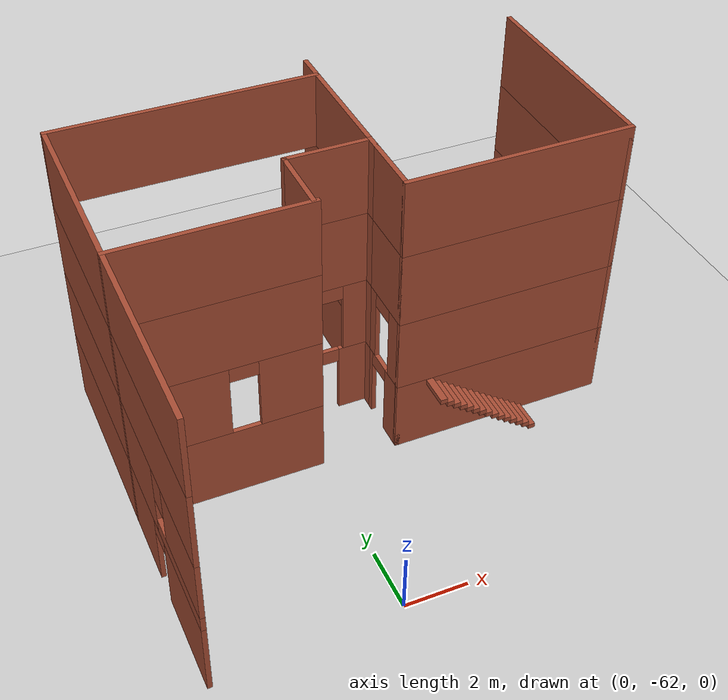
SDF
<sdf version="1.7">
 <world name="default">
  <model name="ground_plane">
   <static>1</static>
   <link name="link">
    <collision name="collision">
     <geometry><plane><normal>0 0 1</normal><size>300 300</size></plane></geometry>
     <surface>
      <contact><collide_bitmask>65535</collide_bitmask></contact>
      <friction><ode><mu>100</mu><mu2>50</mu2></ode></friction>
     </surface>
    </collision>
    <visual name="visual">
     <cast_shadows>0</cast_shadows>
     <geometry><plane><normal>0 0 1</normal><size>300 300</size></plane></geometry>
     <material>
      <script><uri>file://media/materials/scripts/gazebo.material</uri><name>Gazebo/Grey</name></script>
     </material>
    </visual>
   </link>
  </model>
  <model name="Drone_House_2">
   <pose>1.8622 -57.4379 0 0 -0 0</pose>
   <link name="Stairs_0">
    <visual name="Stairs_0_Visual_0">
     <pose>4.91856 0.660416 0.083333 0 -0 -1.5708</pose>
     <geometry><box><size>1 0.233333 0.166667</size></box></geometry>
     <material>
      <script><uri>file://media/materials/scripts/gazebo.material</uri><name>Gazebo/Bricks</name></script>
      <ambient>1 1 1 1</ambient>
     </material>
     <meta><layer>0</layer></meta>
    </visual>
    <collision name="Stairs_0_Collision_0">
     <geometry><box><size>1 0.233333 0.166667</size></box></geometry>
     <pose>4.91856 0.660416 0.083333 0 -0 -1.5708</pose>
    </collision>
    <visual name="Stairs_0_Visual_1">
     <pose>4.68522 0.660416 0.25 0 -0 -1.5708</pose>
     <geometry><box><size>1 0.233333 0.166667</size></box></geometry>
     <material>
      <script><uri>file://media/materials/scripts/gazebo.material</uri><name>Gazebo/Bricks</name></script>
      <ambient>1 1 1 1</ambient>
     </material>
     <meta><layer>0</layer></meta>
    </visual>
    <collision name="Stairs_0_Collision_1">
     <geometry><box><size>1 0.233333 0.166667</size></box></geometry>
     <pose>4.68522 0.660416 0.25 0 -0 -1.5708</pose>
    </collision>
    <visual name="Stairs_0_Visual_2">
     <pose>4.45189 0.660416 0.416667 0 -0 -1.5708</pose>
     <geometry><box><size>1 0.233333 0.166667</size></box></geometry>
     <material>
      <script><uri>file://media/materials/scripts/gazebo.material</uri><name>Gazebo/Bricks</name></script>
      <ambient>1 1 1 1</ambient>
     </material>
     <meta><layer>0</layer></meta>
    </visual>
    <collision name="Stairs_0_Collision_2">
     <geometry><box><size>1 0.233333 0.166667</size></box></geometry>
     <pose>4.45189 0.660416 0.416667 0 -0 -1.5708</pose>
    </collision>
    <visual name="Stairs_0_Visual_3">
     <pose>4.21856 0.660416 0.583333 0 -0 -1.5708</pose>
     <geometry><box><size>1 0.233333 0.166667</size></box></geometry>
     <material>
      <script><uri>file://media/materials/scripts/gazebo.material</uri><name>Gazebo/Bricks</name></script>
      <ambient>1 1 1 1</ambient>
     </material>
     <meta><layer>0</layer></meta>
    </visual>
    <collision name="Stairs_0_Collision_3">
     <geometry><box><size>1 0.233333 0.166667</size></box></geometry>
     <pose>4.21856 0.660416 0.583333 0 -0 -1.5708</pose>
    </collision>
    <visual name="Stairs_0_Visual_4">
     <pose>3.98522 0.660417 0.75 0 -0 -1.5708</pose>
     <geometry><box><size>1 0.233333 0.166667</size></box></geometry>
     <material>
      <script><uri>file://media/materials/scripts/gazebo.material</uri><name>Gazebo/Bricks</name></script>
      <ambient>1 1 1 1</ambient>
     </material>
     <meta><layer>0</layer></meta>
    </visual>
    <collision name="Stairs_0_Collision_4">
     <geometry><box><size>1 0.233333 0.166667</size></box></geometry>
     <pose>3.98522 0.660417 0.75 0 -0 -1.5708</pose>
    </collision>
    <visual name="Stairs_0_Visual_5">
     <pose>3.75189 0.660417 0.916667 0 -0 -1.5708</pose>
     <geometry><box><size>1 0.233333 0.166667</size></box></geometry>
     <material>
      <script><uri>file://media/materials/scripts/gazebo.material</uri><name>Gazebo/Bricks</name></script>
      <ambient>1 1 1 1</ambient>
     </material>
     <meta><layer>0</layer></meta>
    </visual>
    <collision name="Stairs_0_Collision_5">
     <geometry><box><size>1 0.233333 0.166667</size></box></geometry>
     <pose>3.75189 0.660417 0.916667 0 -0 -1.5708</pose>
    </collision>
    <visual name="Stairs_0_Visual_6">
     <pose>3.51856 0.660417 1.08333 0 -0 -1.5708</pose>
     <geometry><box><size>1 0.233333 0.166667</size></box></geometry>
     <material>
      <script><uri>file://media/materials/scripts/gazebo.material</uri><name>Gazebo/Bricks</name></script>
      <ambient>1 1 1 1</ambient>
     </material>
     <meta><layer>0</layer></meta>
    </visual>
    <collision name="Stairs_0_Collision_6">
     <geometry><box><size>1 0.233333 0.166667</size></box></geometry>
     <pose>3.51856 0.660417 1.08333 0 -0 -1.5708</pose>
    </collision>
    <visual name="Stairs_0_Visual_7">
     <pose>3.28522 0.660417 1.25 0 -0 -1.5708</pose>
     <geometry><box><size>1 0.233333 0.166667</size></box></geometry>
     <material>
      <script><uri>file://media/materials/scripts/gazebo.material</uri><name>Gazebo/Bricks</name></script>
      <ambient>1 1 1 1</ambient>
     </material>
     <meta><layer>0</layer></meta>
    </visual>
    <collision name="Stairs_0_Collision_7">
     <geometry><box><size>1 0.233333 0.166667</size></box></geometry>
     <pose>3.28522 0.660417 1.25 0 -0 -1.5708</pose>
    </collision>
    <visual name="Stairs_0_Visual_8">
     <pose>3.05189 0.660417 1.41667 0 -0 -1.5708</pose>
     <geometry><box><size>1 0.233333 0.166667</size></box></geometry>
     <material>
      <script><uri>file://media/materials/scripts/gazebo.material</uri><name>Gazebo/Bricks</name></script>
      <ambient>1 1 1 1</ambient>
     </material>
     <meta><layer>0</layer></meta>
    </visual>
    <collision name="Stairs_0_Collision_8">
     <geometry><box><size>1 0.233333 0.166667</size></box></geometry>
     <pose>3.05189 0.660417 1.41667 0 -0 -1.5708</pose>
    </collision>
    <visual name="Stairs_0_Visual_9">
     <pose>2.81856 0.660417 1.58333 0 -0 -1.5708</pose>
     <geometry><box><size>1 0.233333 0.166667</size></box></geometry>
     <material>
      <script><uri>file://media/materials/scripts/gazebo.material</uri><name>Gazebo/Bricks</name></script>
      <ambient>1 1 1 1</ambient>
     </material>
     <meta><layer>0</layer></meta>
    </visual>
    <collision name="Stairs_0_Collision_9">
     <geometry><box><size>1 0.233333 0.166667</size></box></geometry>
     <pose>2.81856 0.660417 1.58333 0 -0 -1.5708</pose>
    </collision>
    <visual name="Stairs_0_Visual_10">
     <pose>2.58522 0.660417 1.75 0 -0 -1.5708</pose>
     <geometry><box><size>1 0.233333 0.166667</size></box></geometry>
     <material>
      <script><uri>file://media/materials/scripts/gazebo.material</uri><name>Gazebo/Bricks</name></script>
      <ambient>1 1 1 1</ambient>
     </material>
     <meta><layer>0</layer></meta>
    </visual>
    <collision name="Stairs_0_Collision_10">
     <geometry><box><size>1 0.233333 0.166667</size></box></geometry>
     <pose>2.58522 0.660417 1.75 0 -0 -1.5708</pose>
    </collision>
    <visual name="Stairs_0_Visual_11">
     <pose>2.35189 0.660417 1.91667 0 -0 -1.5708</pose>
     <geometry><box><size>1 0.233333 0.166667</size></box></geometry>
     <material>
      <script><uri>file://media/materials/scripts/gazebo.material</uri><name>Gazebo/Bricks</name></script>
      <ambient>1 1 1 1</ambient>
     </material>
     <meta><layer>0</layer></meta>
    </visual>
    <collision name="Stairs_0_Collision_11">
     <geometry><box><size>1 0.233333 0.166667</size></box></geometry>
     <pose>2.35189 0.660417 1.91667 0 -0 -1.5708</pose>
    </collision>
    <visual name="Stairs_0_Visual_12">
     <pose>2.11856 0.660417 2.08333 0 -0 -1.5708</pose>
     <geometry><box><size>1 0.233333 0.166667</size></box></geometry>
     <material>
      <script><uri>file://media/materials/scripts/gazebo.material</uri><name>Gazebo/Bricks</name></script>
      <ambient>1 1 1 1</ambient>
     </material>
     <meta><layer>0</layer></meta>
    </visual>
    <collision name="Stairs_0_Collision_12">
     <geometry><box><size>1 0.233333 0.166667</size></box></geometry>
     <pose>2.11856 0.660417 2.08333 0 -0 -1.5708</pose>
    </collision>
    <visual name="Stairs_0_Visual_13">
     <pose>1.88522 0.660417 2.25 0 -0 -1.5708</pose>
     <geometry><box><size>1 0.233333 0.166667</size></box></geometry>
     <material>
      <script><uri>file://media/materials/scripts/gazebo.material</uri><name>Gazebo/Bricks</name></script>
      <ambient>1 1 1 1</ambient>
     </material>
     <meta><layer>0</layer></meta>
    </visual>
    <collision name="Stairs_0_Collision_13">
     <geometry><box><size>1 0.233333 0.166667</size></box></geometry>
     <pose>1.88522 0.660417 2.25 0 -0 -1.5708</pose>
    </collision>
    <visual name="Stairs_0_Visual_14">
     <pose>1.65189 0.660417 2.41667 0 -0 -1.5708</pose>
     <geometry><box><size>1 0.233333 0.166667</size></box></geometry>
     <material>
      <script><uri>file://media/materials/scripts/gazebo.material</uri><name>Gazebo/Bricks</name></script>
      <ambient>1 1 1 1</ambient>
     </material>
     <meta><layer>0</layer></meta>
    </visual>
    <collision name="Stairs_0_Collision_14">
     <geometry><box><size>1 0.233333 0.166667</size></box></geometry>
     <pose>1.65189 0.660417 2.41667 0 -0 -1.5708</pose>
    </collision>
   </link>
   <link name="Wall_106">
    <collision name="Wall_106_Collision">
     <geometry><box><size>12.5 0.15 2.5</size></box></geometry>
     <pose>0 0 1.25 0 -0 0</pose>
    </collision>
    <visual name="Wall_106_Visual">
     <pose>0 0 1.25 0 -0 0</pose>
     <geometry><box><size>12.5 0.15 2.5</size></box></geometry>
     <material>
      <script><uri>file://media/materials/scripts/gazebo.material</uri><name>Gazebo/Bricks</name></script>
      <ambient>1 1 1 1</ambient>
     </material>
     <meta><layer>3</layer></meta>
    </visual>
    <pose>-7.72394 1.325 7.5 0 -0 -1.5708</pose>
   </link>
   <link name="Wall_108">
    <collision name="Wall_108_Collision">
     <geometry><box><size>6 0.15 2.5</size></box></geometry>
     <pose>0 0 1.25 0 -0 0</pose>
    </collision>
    <visual name="Wall_108_Visual">
     <pose>0 0 1.25 0 -0 0</pose>
     <geometry><box><size>6 0.15 2.5</size></box></geometry>
     <material>
      <script><uri>file://media/materials/scripts/gazebo.material</uri><name>Gazebo/Bricks</name></script>
      <ambient>1 1 1 1</ambient>
     </material>
     <meta><layer>3</layer></meta>
    </visual>
    <pose>-4.80107 1.443 7.5 0 -0 0</pose>
   </link>
   <link name="Wall_109">
    <collision name="Wall_109_Collision">
     <geometry><box><size>8.5 0.15 2.5</size></box></geometry>
     <pose>0 0 1.25 0 -0 0</pose>
    </collision>
    <visual name="Wall_109_Visual">
     <pose>0 0 1.25 0 -0 0</pose>
     <geometry><box><size>8.5 0.15 2.5</size></box></geometry>
     <material>
      <script><uri>file://media/materials/scripts/gazebo.material</uri><name>Gazebo/Bricks</name></script>
      <ambient>1 1 1 1</ambient>
     </material>
     <meta><layer>3</layer></meta>
    </visual>
    <pose>-3.54894 7.5 7.5 0 -0 0</pose>
   </link>
   <link name="Wall_11">
    <collision name="Wall_11_Collision">
     <geometry><box><size>5.25 0.15 2.5</size></box></geometry>
     <pose>0 0 1.25 0 -0 0</pose>
    </collision>
    <visual name="Wall_11_Visual">
     <pose>0 0 1.25 0 -0 0</pose>
     <geometry><box><size>5.25 0.15 2.5</size></box></geometry>
     <material>
      <script><uri>file://media/materials/scripts/gazebo.material</uri><name>Gazebo/Bricks</name></script>
      <ambient>1 1 1 1</ambient>
     </material>
     <meta><layer>0</layer></meta>
    </visual>
    <pose>0.626064 5.8 0 0 -0 -1.5708</pose>
   </link>
   <link name="Wall_111">
    <collision name="Wall_111_Collision">
     <geometry><box><size>5.25 0.15 2.5</size></box></geometry>
     <pose>0 0 1.25 0 -0 0</pose>
    </collision>
    <visual name="Wall_111_Visual">
     <pose>0 0 1.25 0 -0 0</pose>
     <geometry><box><size>5.25 0.15 2.5</size></box></geometry>
     <material>
      <script><uri>file://media/materials/scripts/gazebo.material</uri><name>Gazebo/Bricks</name></script>
      <ambient>1 1 1 1</ambient>
     </material>
     <meta><layer>3</layer></meta>
    </visual>
    <pose>0.626064 5.8 7.5 0 -0 -1.5708</pose>
   </link>
   <link name="Wall_112">
    <collision name="Wall_112_Collision">
     <geometry><box><size>0.5 0.15 2.5</size></box></geometry>
     <pose>0 0 1.25 0 -0 0</pose>
    </collision>
    <visual name="Wall_112_Visual">
     <pose>0 0 1.25 0 -0 0</pose>
     <geometry><box><size>0.5 0.15 2.5</size></box></geometry>
     <material>
      <script><uri>file://media/materials/scripts/gazebo.material</uri><name>Gazebo/Bricks</name></script>
      <ambient>1 1 1 1</ambient>
     </material>
     <meta><layer>3</layer></meta>
    </visual>
    <pose>0.626064 3.425 7.5 0 -0 1.5708</pose>
   </link>
   <link name="Wall_113">
    <collision name="Wall_113_Collision">
     <geometry><box><size>2.75 0.15 2.5</size></box></geometry>
     <pose>0 0 1.25 0 -0 0</pose>
    </collision>
    <visual name="Wall_113_Visual">
     <pose>0 0 1.25 0 -0 0</pose>
     <geometry><box><size>2.75 0.15 2.5</size></box></geometry>
     <material>
      <script><uri>file://media/materials/scripts/gazebo.material</uri><name>Gazebo/Bricks</name></script>
      <ambient>1 1 1 1</ambient>
     </material>
     <meta><layer>3</layer></meta>
    </visual>
    <pose>-0.673936 3.6 7.5 0 -0 3.14159</pose>
   </link>
   <link name="Wall_114">
    <collision name="Wall_114_Collision">
     <geometry><box><size>0.25 0.15 2.5</size></box></geometry>
     <pose>0 0 1.25 0 -0 0</pose>
    </collision>
    <visual name="Wall_114_Visual">
     <pose>0 0 1.25 0 -0 0</pose>
     <geometry><box><size>0.25 0.15 2.5</size></box></geometry>
     <material>
      <script><uri>file://media/materials/scripts/gazebo.material</uri><name>Gazebo/Bricks</name></script>
      <ambient>1 1 1 1</ambient>
     </material>
     <meta><layer>3</layer></meta>
    </visual>
    <pose>-1.97394 3.55 7.5 0 -0 -1.5708</pose>
   </link>
   <link name="Wall_115">
    <collision name="Wall_115_Collision">
     <geometry><box><size>2.25 0.15 2.5</size></box></geometry>
     <pose>0 0 1.25 0 -0 0</pose>
    </collision>
    <visual name="Wall_115_Visual">
     <pose>0 0 1.25 0 -0 0</pose>
     <geometry><box><size>2.25 0.15 2.5</size></box></geometry>
     <material>
      <script><uri>file://media/materials/scripts/gazebo.material</uri><name>Gazebo/Bricks</name></script>
      <ambient>1 1 1 1</ambient>
     </material>
     <meta><layer>3</layer></meta>
    </visual>
    <pose>-1.97394 2.55 7.5 0 -0 -1.5708</pose>
   </link>
   <link name="Wall_116">
    <collision name="Wall_116_Collision">
     <geometry><box><size>2.5 0.15 2.5</size></box></geometry>
     <pose>0 0 1.25 0 -0 0</pose>
    </collision>
    <visual name="Wall_116_Visual">
     <pose>0 0 1.25 0 -0 0</pose>
     <geometry><box><size>2.5 0.15 2.5</size></box></geometry>
     <material>
      <script><uri>file://media/materials/scripts/gazebo.material</uri><name>Gazebo/Bricks</name></script>
      <ambient>1 1 1 1</ambient>
     </material>
     <meta><layer>3</layer></meta>
    </visual>
    <pose>0.626064 2.425 7.5 0 -0 -1.5708</pose>
   </link>
   <link name="Wall_117">
    <collision name="Wall_117_Collision">
     <geometry><box><size>7.25 0.15 2.5</size></box></geometry>
     <pose>0 0 1.25 0 -0 0</pose>
    </collision>
    <visual name="Wall_117_Visual">
     <pose>0 0 1.25 0 -0 0</pose>
     <geometry><box><size>7.25 0.15 2.5</size></box></geometry>
     <material>
      <script><uri>file://media/materials/scripts/gazebo.material</uri><name>Gazebo/Bricks</name></script>
      <ambient>1 1 1 1</ambient>
     </material>
     <meta><layer>3</layer></meta>
    </visual>
    <pose>4.17606 1.25 7.5 0 -0 0</pose>
   </link>
   <link name="Wall_118">
    <collision name="Wall_118_Collision">
     <geometry><box><size>7.25 0.15 2.5</size></box></geometry>
     <pose>0 0 1.25 0 -0 0</pose>
    </collision>
    <visual name="Wall_118_Visual">
     <pose>0 0 1.25 0 -0 0</pose>
     <geometry><box><size>7.25 0.15 2.5</size></box></geometry>
     <material>
      <script><uri>file://media/materials/scripts/gazebo.material</uri><name>Gazebo/Bricks</name></script>
      <ambient>1 1 1 1</ambient>
     </material>
     <meta><layer>3</layer></meta>
    </visual>
    <pose>7.72606 4.8 7.5 0 -0 1.5708</pose>
   </link>
   <link name="Wall_12">
    <collision name="Wall_12_Collision">
     <geometry><box><size>0.5 0.15 2.5</size></box></geometry>
     <pose>0 0 1.25 0 -0 0</pose>
    </collision>
    <visual name="Wall_12_Visual">
     <pose>0 0 1.25 0 -0 0</pose>
     <geometry><box><size>0.5 0.15 2.5</size></box></geometry>
     <material>
      <script><uri>file://media/materials/scripts/gazebo.material</uri><name>Gazebo/Bricks</name></script>
      <ambient>1 1 1 1</ambient>
     </material>
     <meta><layer>0</layer></meta>
    </visual>
    <pose>0.626064 3.425 0 0 -0 1.5708</pose>
   </link>
   <link name="Wall_13">
    <pose>-0.673936 3.6 0 0 -0 3.14159</pose>
    <visual name="Wall_13_Visual_0">
     <pose>-0.843864 0 1.25 0 -0 0</pose>
     <geometry><box><size>1.06227 0.15 2.5</size></box></geometry>
     <material>
      <script><uri>file://media/materials/scripts/gazebo.material</uri><name>Gazebo/Bricks</name></script>
      <ambient>1 1 1 1</ambient>
     </material>
     <meta><layer>0</layer></meta>
    </visual>
    <collision name="Wall_13_Collision_0">
     <geometry><box><size>1.06227 0.15 2.5</size></box></geometry>
     <pose>-0.843864 0 1.25 0 -0 0</pose>
    </collision>
    <visual name="Wall_13_Visual_1">
     <pose>0.981136 0 1.25 0 -0 0</pose>
     <geometry><box><size>0.787728 0.15 2.5</size></box></geometry>
     <material>
      <script><uri>file://media/materials/scripts/gazebo.material</uri><name>Gazebo/Bricks</name></script>
      <ambient>1 1 1 1</ambient>
     </material>
     <meta><layer>0</layer></meta>
    </visual>
    <collision name="Wall_13_Collision_1">
     <geometry><box><size>0.787728 0.15 2.5</size></box></geometry>
     <pose>0.981136 0 1.25 0 -0 0</pose>
    </collision>
    <visual name="Wall_13_Visual_2">
     <pose>0.137272 0 2.25 0 -0 0</pose>
     <geometry><box><size>0.9 0.15 0.5</size></box></geometry>
     <material>
      <script><uri>file://media/materials/scripts/gazebo.material</uri><name>Gazebo/Bricks</name></script>
      <ambient>1 1 1 1</ambient>
     </material>
     <meta><layer>0</layer></meta>
    </visual>
    <collision name="Wall_13_Collision_2">
     <geometry><box><size>0.9 0.15 0.5</size></box></geometry>
     <pose>0.137272 0 2.25 0 -0 0</pose>
    </collision>
   </link>
   <link name="Wall_14">
    <collision name="Wall_14_Collision">
     <geometry><box><size>0.25 0.15 2.5</size></box></geometry>
     <pose>0 0 1.25 0 -0 0</pose>
    </collision>
    <visual name="Wall_14_Visual">
     <pose>0 0 1.25 0 -0 0</pose>
     <geometry><box><size>0.25 0.15 2.5</size></box></geometry>
     <material>
      <script><uri>file://media/materials/scripts/gazebo.material</uri><name>Gazebo/Bricks</name></script>
      <ambient>1 1 1 1</ambient>
     </material>
     <meta><layer>0</layer></meta>
    </visual>
    <pose>-1.97394 3.55 0 0 -0 -1.5708</pose>
   </link>
   <link name="Wall_16">
    <pose>-1.97394 2.55 0 0 -0 -1.5708</pose>
    <visual name="Wall_16_Visual_0">
     <pose>-0.800315 0 1.25 0 -0 0</pose>
     <geometry><box><size>0.649369 0.15 2.5</size></box></geometry>
     <material>
      <script><uri>file://media/materials/scripts/gazebo.material</uri><name>Gazebo/Bricks</name></script>
      <ambient>1 1 1 1</ambient>
     </material>
     <meta><layer>0</layer></meta>
    </visual>
    <collision name="Wall_16_Collision_0">
     <geometry><box><size>0.649369 0.15 2.5</size></box></geometry>
     <pose>-0.800315 0 1.25 0 -0 0</pose>
    </collision>
    <visual name="Wall_16_Visual_1">
     <pose>0.774685 0 1.25 0 -0 0</pose>
     <geometry><box><size>0.700631 0.15 2.5</size></box></geometry>
     <material>
      <script><uri>file://media/materials/scripts/gazebo.material</uri><name>Gazebo/Bricks</name></script>
      <ambient>1 1 1 1</ambient>
     </material>
     <meta><layer>0</layer></meta>
    </visual>
    <collision name="Wall_16_Collision_1">
     <geometry><box><size>0.700631 0.15 2.5</size></box></geometry>
     <pose>0.774685 0 1.25 0 -0 0</pose>
    </collision>
    <visual name="Wall_16_Visual_2">
     <pose>-0.025631 0 2.25 0 -0 0</pose>
     <geometry><box><size>0.9 0.15 0.5</size></box></geometry>
     <material>
      <script><uri>file://media/materials/scripts/gazebo.material</uri><name>Gazebo/Bricks</name></script>
      <ambient>1 1 1 1</ambient>
     </material>
     <meta><layer>0</layer></meta>
    </visual>
    <collision name="Wall_16_Collision_2">
     <geometry><box><size>0.9 0.15 0.5</size></box></geometry>
     <pose>-0.025631 0 2.25 0 -0 0</pose>
    </collision>
   </link>
   <link name="Wall_18">
    <pose>0.626064 2.425 0 0 -0 -1.5708</pose>
    <visual name="Wall_18_Visual_0">
     <pose>-0.898715 0 1.25 0 -0 0</pose>
     <geometry><box><size>0.70257 0.15 2.5</size></box></geometry>
     <material>
      <script><uri>file://media/materials/scripts/gazebo.material</uri><name>Gazebo/Bricks</name></script>
      <ambient>1 1 1 1</ambient>
     </material>
     <meta><layer>0</layer></meta>
    </visual>
    <collision name="Wall_18_Collision_0">
     <geometry><box><size>0.70257 0.15 2.5</size></box></geometry>
     <pose>-0.898715 0 1.25 0 -0 0</pose>
    </collision>
    <visual name="Wall_18_Visual_1">
     <pose>0.801285 0 1.25 0 -0 0</pose>
     <geometry><box><size>0.89743 0.15 2.5</size></box></geometry>
     <material>
      <script><uri>file://media/materials/scripts/gazebo.material</uri><name>Gazebo/Bricks</name></script>
      <ambient>1 1 1 1</ambient>
     </material>
     <meta><layer>0</layer></meta>
    </visual>
    <collision name="Wall_18_Collision_1">
     <geometry><box><size>0.89743 0.15 2.5</size></box></geometry>
     <pose>0.801285 0 1.25 0 -0 0</pose>
    </collision>
    <visual name="Wall_18_Visual_2">
     <pose>-0.09743 0 2.25 0 -0 0</pose>
     <geometry><box><size>0.9 0.15 0.5</size></box></geometry>
     <material>
      <script><uri>file://media/materials/scripts/gazebo.material</uri><name>Gazebo/Bricks</name></script>
      <ambient>1 1 1 1</ambient>
     </material>
     <meta><layer>0</layer></meta>
    </visual>
    <collision name="Wall_18_Collision_2">
     <geometry><box><size>0.9 0.15 0.5</size></box></geometry>
     <pose>-0.09743 0 2.25 0 -0 0</pose>
    </collision>
   </link>
   <link name="Wall_19">
    <collision name="Wall_19_Collision">
     <geometry><box><size>7.25 0.15 2.5</size></box></geometry>
     <pose>0 0 1.25 0 -0 0</pose>
    </collision>
    <visual name="Wall_19_Visual">
     <pose>0 0 1.25 0 -0 0</pose>
     <geometry><box><size>7.25 0.15 2.5</size></box></geometry>
     <material>
      <script><uri>file://media/materials/scripts/gazebo.material</uri><name>Gazebo/Bricks</name></script>
      <ambient>1 1 1 1</ambient>
     </material>
     <meta><layer>0</layer></meta>
    </visual>
    <pose>4.17606 1.25 0 0 -0 0</pose>
   </link>
   <link name="Wall_20">
    <pose>7.72606 4.8 0 0 -0 1.5708</pose>
    <visual name="Wall_20_Visual_0">
     <pose>-2.40648 0 1.25 0 -0 0</pose>
     <geometry><box><size>2.43704 0.15 2.5</size></box></geometry>
     <material>
      <script><uri>file://media/materials/scripts/gazebo.material</uri><name>Gazebo/Bricks</name></script>
      <ambient>1 1 1 1</ambient>
     </material>
     <meta><layer>0</layer></meta>
    </visual>
    <collision name="Wall_20_Collision_0">
     <geometry><box><size>2.43704 0.15 2.5</size></box></geometry>
     <pose>-2.40648 0 1.25 0 -0 0</pose>
    </collision>
    <visual name="Wall_20_Visual_1">
     <pose>1.21852 0 0.25 0 -0 0</pose>
     <geometry><box><size>4.81296 0.15 0.5</size></box></geometry>
     <material>
      <script><uri>file://media/materials/scripts/gazebo.material</uri><name>Gazebo/Bricks</name></script>
      <ambient>1 1 1 1</ambient>
     </material>
     <meta><layer>0</layer></meta>
    </visual>
    <collision name="Wall_20_Collision_1">
     <geometry><box><size>4.81296 0.15 0.5</size></box></geometry>
     <pose>1.21852 0 0.25 0 -0 0</pose>
    </collision>
    <visual name="Wall_20_Visual_2">
     <pose>1.61852 0 1.5 0 -0 0</pose>
     <geometry><box><size>4.01296 0.15 2</size></box></geometry>
     <material>
      <script><uri>file://media/materials/scripts/gazebo.material</uri><name>Gazebo/Bricks</name></script>
      <ambient>1 1 1 1</ambient>
     </material>
     <meta><layer>0</layer></meta>
    </visual>
    <collision name="Wall_20_Collision_2">
     <geometry><box><size>4.01296 0.15 2</size></box></geometry>
     <pose>1.61852 0 1.5 0 -0 0</pose>
    </collision>
    <visual name="Wall_20_Visual_3">
     <pose>-0.787959 0 1.9 0 -0 0</pose>
     <geometry><box><size>0.8 0.15 1.2</size></box></geometry>
     <material>
      <script><uri>file://media/materials/scripts/gazebo.material</uri><name>Gazebo/Bricks</name></script>
      <ambient>1 1 1 1</ambient>
     </material>
     <meta><layer>0</layer></meta>
    </visual>
    <collision name="Wall_20_Collision_3">
     <geometry><box><size>0.8 0.15 1.2</size></box></geometry>
     <pose>-0.787959 0 1.9 0 -0 0</pose>
    </collision>
   </link>
   <link name="Wall_35">
    <pose>-7.72394 1.325 2.5 0 -0 -1.5708</pose>
    <visual name="Wall_35_Visual_0">
     <pose>-1.7824 0 1.25 0 -0 0</pose>
     <geometry><box><size>8.9352 0.15 2.5</size></box></geometry>
     <material>
      <script><uri>file://media/materials/scripts/gazebo.material</uri><name>Gazebo/Bricks</name></script>
      <ambient>1 1 1 1</ambient>
     </material>
     <meta><layer>1</layer></meta>
    </visual>
    <collision name="Wall_35_Collision_0">
     <geometry><box><size>8.9352 0.15 2.5</size></box></geometry>
     <pose>-1.7824 0 1.25 0 -0 0</pose>
    </collision>
    <visual name="Wall_35_Visual_1">
     <pose>4.4676 0 0.25 0 -0 0</pose>
     <geometry><box><size>3.5648 0.15 0.5</size></box></geometry>
     <material>
      <script><uri>file://media/materials/scripts/gazebo.material</uri><name>Gazebo/Bricks</name></script>
      <ambient>1 1 1 1</ambient>
     </material>
     <meta><layer>1</layer></meta>
    </visual>
    <collision name="Wall_35_Collision_1">
     <geometry><box><size>3.5648 0.15 0.5</size></box></geometry>
     <pose>4.4676 0 0.25 0 -0 0</pose>
    </collision>
    <visual name="Wall_35_Visual_2">
     <pose>4.8676 0 1.5 0 -0 0</pose>
     <geometry><box><size>2.7648 0.15 2</size></box></geometry>
     <material>
      <script><uri>file://media/materials/scripts/gazebo.material</uri><name>Gazebo/Bricks</name></script>
      <ambient>1 1 1 1</ambient>
     </material>
     <meta><layer>1</layer></meta>
    </visual>
    <collision name="Wall_35_Collision_2">
     <geometry><box><size>2.7648 0.15 2</size></box></geometry>
     <pose>4.8676 0 1.5 0 -0 0</pose>
    </collision>
    <visual name="Wall_35_Visual_3">
     <pose>3.0852 0 1.9 0 -0 0</pose>
     <geometry><box><size>0.8 0.15 1.2</size></box></geometry>
     <material>
      <script><uri>file://media/materials/scripts/gazebo.material</uri><name>Gazebo/Bricks</name></script>
      <ambient>1 1 1 1</ambient>
     </material>
     <meta><layer>1</layer></meta>
    </visual>
    <collision name="Wall_35_Collision_3">
     <geometry><box><size>0.8 0.15 1.2</size></box></geometry>
     <pose>3.0852 0 1.9 0 -0 0</pose>
    </collision>
   </link>
   <link name="Wall_37">
    <pose>-4.80107 1.443 2.5 0 -0 0</pose>
    <visual name="Wall_37_Visual_0">
     <pose>-1.43248 0 1.25 0 -0 0</pose>
     <geometry><box><size>3.13503 0.15 2.5</size></box></geometry>
     <material>
      <script><uri>file://media/materials/scripts/gazebo.material</uri><name>Gazebo/Bricks</name></script>
      <ambient>1 1 1 1</ambient>
     </material>
     <meta><layer>1</layer></meta>
    </visual>
    <collision name="Wall_37_Collision_0">
     <geometry><box><size>3.13503 0.15 2.5</size></box></geometry>
     <pose>-1.43248 0 1.25 0 -0 0</pose>
    </collision>
    <visual name="Wall_37_Visual_1">
     <pose>2.01752 0 1.25 0 -0 0</pose>
     <geometry><box><size>1.96497 0.15 2.5</size></box></geometry>
     <material>
      <script><uri>file://media/materials/scripts/gazebo.material</uri><name>Gazebo/Bricks</name></script>
      <ambient>1 1 1 1</ambient>
     </material>
     <meta><layer>1</layer></meta>
    </visual>
    <collision name="Wall_37_Collision_1">
     <geometry><box><size>1.96497 0.15 2.5</size></box></geometry>
     <pose>2.01752 0 1.25 0 -0 0</pose>
    </collision>
    <visual name="Wall_37_Visual_2">
     <pose>0.585032 0 2.25 0 -0 0</pose>
     <geometry><box><size>0.9 0.15 0.5</size></box></geometry>
     <material>
      <script><uri>file://media/materials/scripts/gazebo.material</uri><name>Gazebo/Bricks</name></script>
      <ambient>1 1 1 1</ambient>
     </material>
     <meta><layer>1</layer></meta>
    </visual>
    <collision name="Wall_37_Collision_2">
     <geometry><box><size>0.9 0.15 0.5</size></box></geometry>
     <pose>0.585032 0 2.25 0 -0 0</pose>
    </collision>
   </link>
   <link name="Wall_4">
    <pose>-7.72394 1.325 0 0 -0 -1.5708</pose>
    <visual name="Wall_4_Visual_0">
     <pose>-2.0069 0 1.25 0 -0 0</pose>
     <geometry><box><size>8.4862 0.15 2.5</size></box></geometry>
     <material>
      <script><uri>file://media/materials/scripts/gazebo.material</uri><name>Gazebo/Bricks</name></script>
      <ambient>1 1 1 1</ambient>
     </material>
     <meta><layer>0</layer></meta>
    </visual>
    <collision name="Wall_4_Collision_0">
     <geometry><box><size>8.4862 0.15 2.5</size></box></geometry>
     <pose>-2.0069 0 1.25 0 -0 0</pose>
    </collision>
    <visual name="Wall_4_Visual_1">
     <pose>4.6931 0 1.25 0 -0 0</pose>
     <geometry><box><size>3.1138 0.15 2.5</size></box></geometry>
     <material>
      <script><uri>file://media/materials/scripts/gazebo.material</uri><name>Gazebo/Bricks</name></script>
      <ambient>1 1 1 1</ambient>
     </material>
     <meta><layer>0</layer></meta>
    </visual>
    <collision name="Wall_4_Collision_1">
     <geometry><box><size>3.1138 0.15 2.5</size></box></geometry>
     <pose>4.6931 0 1.25 0 -0 0</pose>
    </collision>
    <visual name="Wall_4_Visual_2">
     <pose>2.6862 0 2.25 0 -0 0</pose>
     <geometry><box><size>0.9 0.15 0.5</size></box></geometry>
     <material>
      <script><uri>file://media/materials/scripts/gazebo.material</uri><name>Gazebo/Bricks</name></script>
      <ambient>1 1 1 1</ambient>
     </material>
     <meta><layer>0</layer></meta>
    </visual>
    <collision name="Wall_4_Collision_2">
     <geometry><box><size>0.9 0.15 0.5</size></box></geometry>
     <pose>2.6862 0 2.25 0 -0 0</pose>
    </collision>
   </link>
   <link name="Wall_40">
    <collision name="Wall_40_Collision">
     <geometry><box><size>5.25 0.15 2.5</size></box></geometry>
     <pose>0 0 1.25 0 -0 0</pose>
    </collision>
    <visual name="Wall_40_Visual">
     <pose>0 0 1.25 0 -0 0</pose>
     <geometry><box><size>5.25 0.15 2.5</size></box></geometry>
     <material>
      <script><uri>file://media/materials/scripts/gazebo.material</uri><name>Gazebo/Bricks</name></script>
      <ambient>1 1 1 1</ambient>
     </material>
     <meta><layer>1</layer></meta>
    </visual>
    <pose>0.626064 5.8 2.5 0 -0 -1.5708</pose>
   </link>
   <link name="Wall_41">
    <collision name="Wall_41_Collision">
     <geometry><box><size>0.5 0.15 2.5</size></box></geometry>
     <pose>0 0 1.25 0 -0 0</pose>
    </collision>
    <visual name="Wall_41_Visual">
     <pose>0 0 1.25 0 -0 0</pose>
     <geometry><box><size>0.5 0.15 2.5</size></box></geometry>
     <material>
      <script><uri>file://media/materials/scripts/gazebo.material</uri><name>Gazebo/Bricks</name></script>
      <ambient>1 1 1 1</ambient>
     </material>
     <meta><layer>1</layer></meta>
    </visual>
    <pose>0.626064 3.425 2.5 0 -0 1.5708</pose>
   </link>
   <link name="Wall_42">
    <pose>-0.673936 3.6 2.5 0 -0 3.14159</pose>
    <visual name="Wall_42_Visual_0">
     <pose>-0.910365 0 1.25 0 -0 0</pose>
     <geometry><box><size>0.929271 0.15 2.5</size></box></geometry>
     <material>
      <script><uri>file://media/materials/scripts/gazebo.material</uri><name>Gazebo/Bricks</name></script>
      <ambient>1 1 1 1</ambient>
     </material>
     <meta><layer>1</layer></meta>
    </visual>
    <collision name="Wall_42_Collision_0">
     <geometry><box><size>0.929271 0.15 2.5</size></box></geometry>
     <pose>-0.910365 0 1.25 0 -0 0</pose>
    </collision>
    <visual name="Wall_42_Visual_1">
     <pose>0.914635 0 1.25 0 -0 0</pose>
     <geometry><box><size>0.920729 0.15 2.5</size></box></geometry>
     <material>
      <script><uri>file://media/materials/scripts/gazebo.material</uri><name>Gazebo/Bricks</name></script>
      <ambient>1 1 1 1</ambient>
     </material>
     <meta><layer>1</layer></meta>
    </visual>
    <collision name="Wall_42_Collision_1">
     <geometry><box><size>0.920729 0.15 2.5</size></box></geometry>
     <pose>0.914635 0 1.25 0 -0 0</pose>
    </collision>
    <visual name="Wall_42_Visual_2">
     <pose>0.004271 0 2.25 0 -0 0</pose>
     <geometry><box><size>0.9 0.15 0.5</size></box></geometry>
     <material>
      <script><uri>file://media/materials/scripts/gazebo.material</uri><name>Gazebo/Bricks</name></script>
      <ambient>1 1 1 1</ambient>
     </material>
     <meta><layer>1</layer></meta>
    </visual>
    <collision name="Wall_42_Collision_2">
     <geometry><box><size>0.9 0.15 0.5</size></box></geometry>
     <pose>0.004271 0 2.25 0 -0 0</pose>
    </collision>
   </link>
   <link name="Wall_43">
    <collision name="Wall_43_Collision">
     <geometry><box><size>0.25 0.15 2.5</size></box></geometry>
     <pose>0 0 1.25 0 -0 0</pose>
    </collision>
    <visual name="Wall_43_Visual">
     <pose>0 0 1.25 0 -0 0</pose>
     <geometry><box><size>0.25 0.15 2.5</size></box></geometry>
     <material>
      <script><uri>file://media/materials/scripts/gazebo.material</uri><name>Gazebo/Bricks</name></script>
      <ambient>1 1 1 1</ambient>
     </material>
     <meta><layer>1</layer></meta>
    </visual>
    <pose>-1.97394 3.55 2.5 0 -0 -1.5708</pose>
   </link>
   <link name="Wall_44">
    <pose>-1.97394 2.55 2.5 0 -0 -1.5708</pose>
    <visual name="Wall_44_Visual_0">
     <pose>-0.773715 0 1.25 0 -0 0</pose>
     <geometry><box><size>0.70257 0.15 2.5</size></box></geometry>
     <material>
      <script><uri>file://media/materials/scripts/gazebo.material</uri><name>Gazebo/Bricks</name></script>
      <ambient>1 1 1 1</ambient>
     </material>
     <meta><layer>1</layer></meta>
    </visual>
    <collision name="Wall_44_Collision_0">
     <geometry><box><size>0.70257 0.15 2.5</size></box></geometry>
     <pose>-0.773715 0 1.25 0 -0 0</pose>
    </collision>
    <visual name="Wall_44_Visual_1">
     <pose>0.801285 0 1.25 0 -0 0</pose>
     <geometry><box><size>0.64743 0.15 2.5</size></box></geometry>
     <material>
      <script><uri>file://media/materials/scripts/gazebo.material</uri><name>Gazebo/Bricks</name></script>
      <ambient>1 1 1 1</ambient>
     </material>
     <meta><layer>1</layer></meta>
    </visual>
    <collision name="Wall_44_Collision_1">
     <geometry><box><size>0.64743 0.15 2.5</size></box></geometry>
     <pose>0.801285 0 1.25 0 -0 0</pose>
    </collision>
    <visual name="Wall_44_Visual_2">
     <pose>0.02757 0 2.25 0 -0 0</pose>
     <geometry><box><size>0.9 0.15 0.5</size></box></geometry>
     <material>
      <script><uri>file://media/materials/scripts/gazebo.material</uri><name>Gazebo/Bricks</name></script>
      <ambient>1 1 1 1</ambient>
     </material>
     <meta><layer>1</layer></meta>
    </visual>
    <collision name="Wall_44_Collision_2">
     <geometry><box><size>0.9 0.15 0.5</size></box></geometry>
     <pose>0.02757 0 2.25 0 -0 0</pose>
    </collision>
   </link>
   <link name="Wall_45">
    <pose>0.626064 2.425 2.5 0 -0 -1.5708</pose>
    <visual name="Wall_45_Visual_0">
     <pose>-0.818915 0 1.25 0 -0 0</pose>
     <geometry><box><size>0.862171 0.15 2.5</size></box></geometry>
     <material>
      <script><uri>file://media/materials/scripts/gazebo.material</uri><name>Gazebo/Bricks</name></script>
      <ambient>1 1 1 1</ambient>
     </material>
     <meta><layer>1</layer></meta>
    </visual>
    <collision name="Wall_45_Collision_0">
     <geometry><box><size>0.862171 0.15 2.5</size></box></geometry>
     <pose>-0.818915 0 1.25 0 -0 0</pose>
    </collision>
    <visual name="Wall_45_Visual_1">
     <pose>0.881085 0 1.25 0 -0 0</pose>
     <geometry><box><size>0.737829 0.15 2.5</size></box></geometry>
     <material>
      <script><uri>file://media/materials/scripts/gazebo.material</uri><name>Gazebo/Bricks</name></script>
      <ambient>1 1 1 1</ambient>
     </material>
     <meta><layer>1</layer></meta>
    </visual>
    <collision name="Wall_45_Collision_1">
     <geometry><box><size>0.737829 0.15 2.5</size></box></geometry>
     <pose>0.881085 0 1.25 0 -0 0</pose>
    </collision>
    <visual name="Wall_45_Visual_2">
     <pose>0.062171 0 2.25 0 -0 0</pose>
     <geometry><box><size>0.9 0.15 0.5</size></box></geometry>
     <material>
      <script><uri>file://media/materials/scripts/gazebo.material</uri><name>Gazebo/Bricks</name></script>
      <ambient>1 1 1 1</ambient>
     </material>
     <meta><layer>1</layer></meta>
    </visual>
    <collision name="Wall_45_Collision_2">
     <geometry><box><size>0.9 0.15 0.5</size></box></geometry>
     <pose>0.062171 0 2.25 0 -0 0</pose>
    </collision>
   </link>
   <link name="Wall_46">
    <collision name="Wall_46_Collision">
     <geometry><box><size>7.25 0.15 2.5</size></box></geometry>
     <pose>0 0 1.25 0 -0 0</pose>
    </collision>
    <visual name="Wall_46_Visual">
     <pose>0 0 1.25 0 -0 0</pose>
     <geometry><box><size>7.25 0.15 2.5</size></box></geometry>
     <material>
      <script><uri>file://media/materials/scripts/gazebo.material</uri><name>Gazebo/Bricks</name></script>
      <ambient>1 1 1 1</ambient>
     </material>
     <meta><layer>1</layer></meta>
    </visual>
    <pose>4.17606 1.25 2.5 0 -0 0</pose>
   </link>
   <link name="Wall_47">
    <pose>7.72606 4.8 2.5 0 -0 1.5708</pose>
    <visual name="Wall_47_Visual_0">
     <pose>-1.90108 0 1.25 0 -0 0</pose>
     <geometry><box><size>3.44785 0.15 2.5</size></box></geometry>
     <material>
      <script><uri>file://media/materials/scripts/gazebo.material</uri><name>Gazebo/Bricks</name></script>
      <ambient>1 1 1 1</ambient>
     </material>
     <meta><layer>1</layer></meta>
    </visual>
    <collision name="Wall_47_Collision_0">
     <geometry><box><size>3.44785 0.15 2.5</size></box></geometry>
     <pose>-1.90108 0 1.25 0 -0 0</pose>
    </collision>
    <visual name="Wall_47_Visual_1">
     <pose>1.72392 0 0.25 0 -0 0</pose>
     <geometry><box><size>3.80215 0.15 0.5</size></box></geometry>
     <material>
      <script><uri>file://media/materials/scripts/gazebo.material</uri><name>Gazebo/Bricks</name></script>
      <ambient>1 1 1 1</ambient>
     </material>
     <meta><layer>1</layer></meta>
    </visual>
    <collision name="Wall_47_Collision_1">
     <geometry><box><size>3.80215 0.15 0.5</size></box></geometry>
     <pose>1.72392 0 0.25 0 -0 0</pose>
    </collision>
    <visual name="Wall_47_Visual_2">
     <pose>2.12392 0 1.5 0 -0 0</pose>
     <geometry><box><size>3.00215 0.15 2</size></box></geometry>
     <material>
      <script><uri>file://media/materials/scripts/gazebo.material</uri><name>Gazebo/Bricks</name></script>
      <ambient>1 1 1 1</ambient>
     </material>
     <meta><layer>1</layer></meta>
    </visual>
    <collision name="Wall_47_Collision_2">
     <geometry><box><size>3.00215 0.15 2</size></box></geometry>
     <pose>2.12392 0 1.5 0 -0 0</pose>
    </collision>
    <visual name="Wall_47_Visual_3">
     <pose>0.222849 0 1.9 0 -0 0</pose>
     <geometry><box><size>0.8 0.15 1.2</size></box></geometry>
     <material>
      <script><uri>file://media/materials/scripts/gazebo.material</uri><name>Gazebo/Bricks</name></script>
      <ambient>1 1 1 1</ambient>
     </material>
     <meta><layer>1</layer></meta>
    </visual>
    <collision name="Wall_47_Collision_3">
     <geometry><box><size>0.8 0.15 1.2</size></box></geometry>
     <pose>0.222849 0 1.9 0 -0 0</pose>
    </collision>
   </link>
   <link name="Wall_7">
    <collision name="Wall_7_Collision">
     <geometry><box><size>6 0.15 2.5</size></box></geometry>
     <pose>0 0 1.25 0 -0 0</pose>
    </collision>
    <visual name="Wall_7_Visual">
     <pose>0 0 1.25 0 -0 0</pose>
     <geometry><box><size>6 0.15 2.5</size></box></geometry>
     <material>
      <script><uri>file://media/materials/scripts/gazebo.material</uri><name>Gazebo/Bricks</name></script>
      <ambient>1 1 1 1</ambient>
     </material>
     <meta><layer>0</layer></meta>
    </visual>
    <pose>-4.80107 1.443 0 0 -0 0</pose>
   </link>
   <link name="Wall_84">
    <collision name="Wall_84_Collision">
     <geometry><box><size>12.5 0.15 2.5</size></box></geometry>
     <pose>0 0 1.25 0 -0 0</pose>
    </collision>
    <visual name="Wall_84_Visual">
     <pose>0 0 1.25 0 -0 0</pose>
     <geometry><box><size>12.5 0.15 2.5</size></box></geometry>
     <material>
      <script><uri>file://media/materials/scripts/gazebo.material</uri><name>Gazebo/Bricks</name></script>
      <ambient>1 1 1 1</ambient>
     </material>
     <meta><layer>2</layer></meta>
    </visual>
    <pose>-7.72394 1.325 5 0 -0 -1.5708</pose>
   </link>
   <link name="Wall_86">
    <collision name="Wall_86_Collision">
     <geometry><box><size>6 0.15 2.5</size></box></geometry>
     <pose>0 0 1.25 0 -0 0</pose>
    </collision>
    <visual name="Wall_86_Visual">
     <pose>0 0 1.25 0 -0 0</pose>
     <geometry><box><size>6 0.15 2.5</size></box></geometry>
     <material>
      <script><uri>file://media/materials/scripts/gazebo.material</uri><name>Gazebo/Bricks</name></script>
      <ambient>1 1 1 1</ambient>
     </material>
     <meta><layer>2</layer></meta>
    </visual>
    <pose>-4.80107 1.443 5 0 -0 0</pose>
   </link>
   <link name="Wall_89">
    <collision name="Wall_89_Collision">
     <geometry><box><size>5.25 0.15 2.5</size></box></geometry>
     <pose>0 0 1.25 0 -0 0</pose>
    </collision>
    <visual name="Wall_89_Visual">
     <pose>0 0 1.25 0 -0 0</pose>
     <geometry><box><size>5.25 0.15 2.5</size></box></geometry>
     <material>
      <script><uri>file://media/materials/scripts/gazebo.material</uri><name>Gazebo/Bricks</name></script>
      <ambient>1 1 1 1</ambient>
     </material>
     <meta><layer>2</layer></meta>
    </visual>
    <pose>0.626064 5.8 5 0 -0 -1.5708</pose>
   </link>
   <link name="Wall_90">
    <collision name="Wall_90_Collision">
     <geometry><box><size>0.5 0.15 2.5</size></box></geometry>
     <pose>0 0 1.25 0 -0 0</pose>
    </collision>
    <visual name="Wall_90_Visual">
     <pose>0 0 1.25 0 -0 0</pose>
     <geometry><box><size>0.5 0.15 2.5</size></box></geometry>
     <material>
      <script><uri>file://media/materials/scripts/gazebo.material</uri><name>Gazebo/Bricks</name></script>
      <ambient>1 1 1 1</ambient>
     </material>
     <meta><layer>2</layer></meta>
    </visual>
    <pose>0.626064 3.425 5 0 -0 1.5708</pose>
   </link>
   <link name="Wall_91">
    <collision name="Wall_91_Collision">
     <geometry><box><size>2.75 0.15 2.5</size></box></geometry>
     <pose>0 0 1.25 0 -0 0</pose>
    </collision>
    <visual name="Wall_91_Visual">
     <pose>0 0 1.25 0 -0 0</pose>
     <geometry><box><size>2.75 0.15 2.5</size></box></geometry>
     <material>
      <script><uri>file://media/materials/scripts/gazebo.material</uri><name>Gazebo/Bricks</name></script>
      <ambient>1 1 1 1</ambient>
     </material>
     <meta><layer>2</layer></meta>
    </visual>
    <pose>-0.673936 3.6 5 0 -0 3.14159</pose>
   </link>
   <link name="Wall_92">
    <collision name="Wall_92_Collision">
     <geometry><box><size>0.25 0.15 2.5</size></box></geometry>
     <pose>0 0 1.25 0 -0 0</pose>
    </collision>
    <visual name="Wall_92_Visual">
     <pose>0 0 1.25 0 -0 0</pose>
     <geometry><box><size>0.25 0.15 2.5</size></box></geometry>
     <material>
      <script><uri>file://media/materials/scripts/gazebo.material</uri><name>Gazebo/Bricks</name></script>
      <ambient>1 1 1 1</ambient>
     </material>
     <meta><layer>2</layer></meta>
    </visual>
    <pose>-1.97394 3.55 5 0 -0 -1.5708</pose>
   </link>
   <link name="Wall_93">
    <collision name="Wall_93_Collision">
     <geometry><box><size>2.25 0.15 2.5</size></box></geometry>
     <pose>0 0 1.25 0 -0 0</pose>
    </collision>
    <visual name="Wall_93_Visual">
     <pose>0 0 1.25 0 -0 0</pose>
     <geometry><box><size>2.25 0.15 2.5</size></box></geometry>
     <material>
      <script><uri>file://media/materials/scripts/gazebo.material</uri><name>Gazebo/Bricks</name></script>
      <ambient>1 1 1 1</ambient>
     </material>
     <meta><layer>2</layer></meta>
    </visual>
    <pose>-1.97394 2.55 5 0 -0 -1.5708</pose>
   </link>
   <link name="Wall_94">
    <collision name="Wall_94_Collision">
     <geometry><box><size>2.5 0.15 2.5</size></box></geometry>
     <pose>0 0 1.25 0 -0 0</pose>
    </collision>
    <visual name="Wall_94_Visual">
     <pose>0 0 1.25 0 -0 0</pose>
     <geometry><box><size>2.5 0.15 2.5</size></box></geometry>
     <material>
      <script><uri>file://media/materials/scripts/gazebo.material</uri><name>Gazebo/Bricks</name></script>
      <ambient>1 1 1 1</ambient>
     </material>
     <meta><layer>2</layer></meta>
    </visual>
    <pose>0.626064 2.425 5 0 -0 -1.5708</pose>
   </link>
   <link name="Wall_95">
    <collision name="Wall_95_Collision">
     <geometry><box><size>7.25 0.15 2.5</size></box></geometry>
     <pose>0 0 1.25 0 -0 0</pose>
    </collision>
    <visual name="Wall_95_Visual">
     <pose>0 0 1.25 0 -0 0</pose>
     <geometry><box><size>7.25 0.15 2.5</size></box></geometry>
     <material>
      <script><uri>file://media/materials/scripts/gazebo.material</uri><name>Gazebo/Bricks</name></script>
      <ambient>1 1 1 1</ambient>
     </material>
     <meta><layer>2</layer></meta>
    </visual>
    <pose>4.17606 1.25 5 0 -0 0</pose>
   </link>
   <link name="Wall_96">
    <collision name="Wall_96_Collision">
     <geometry><box><size>7.25 0.15 2.5</size></box></geometry>
     <pose>0 0 1.25 0 -0 0</pose>
    </collision>
    <visual name="Wall_96_Visual">
     <pose>0 0 1.25 0 -0 0</pose>
     <geometry><box><size>7.25 0.15 2.5</size></box></geometry>
     <material>
      <script><uri>file://media/materials/scripts/gazebo.material</uri><name>Gazebo/Bricks</name></script>
      <ambient>1 1 1 1</ambient>
     </material>
     <meta><layer>2</layer></meta>
    </visual>
    <pose>7.72606 4.8 5 0 -0 1.5708</pose>
   </link>
   <static>1</static>
  </model>
 </world>
</sdf>
